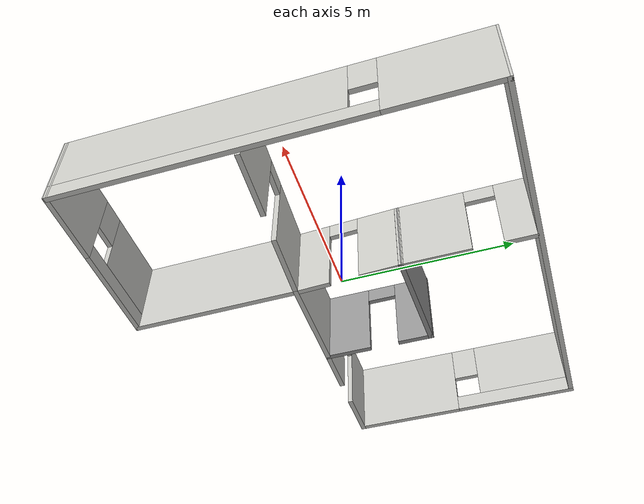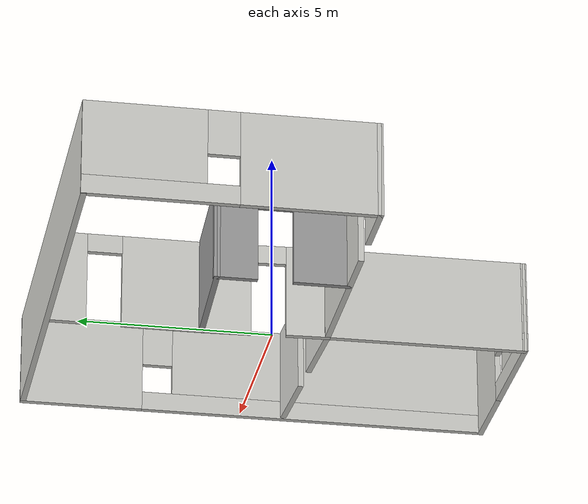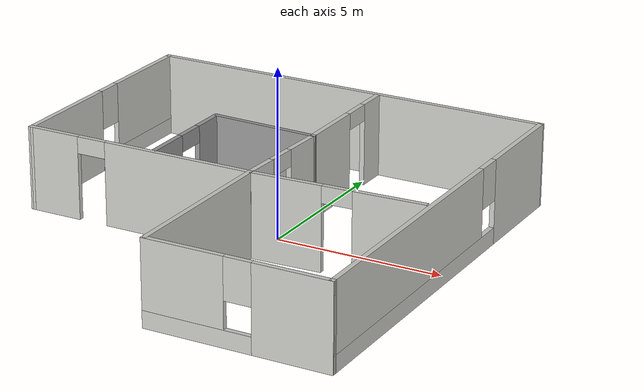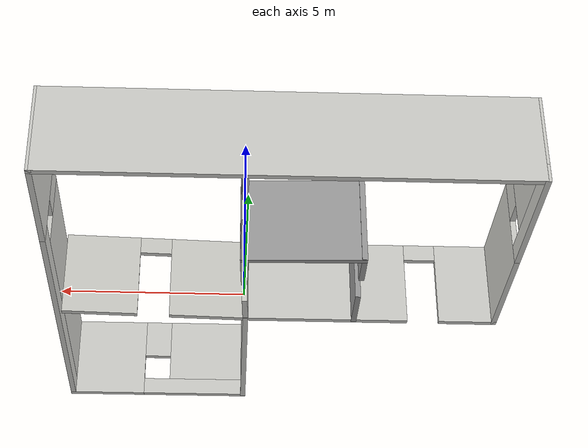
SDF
<?xml version='1.0'?>
<sdf version='1.6'>
  <model name='Appt'>
    <pose frame=''>-0.943393 -0.407292 0 0 -0 0</pose>
    <link name='Wall_10'>
      <pose frame=''>-6.20936 2.58411 0 0 -0 1.57018</pose>
      <visual name='Wall_10_Visual_0'>
        <pose frame=''>-1.92753 0 1.25 0 -0 0</pose>
        <geometry>
          <box>
            <size>3.50674 0.15 2.5</size>
          </box>
        </geometry>
        <material>
          <script>
            <uri>file://media/materials/scripts/gazebo.material</uri>
            <name>Gazebo/CeilingTiled</name>
          </script>
          <ambient>1 1 1 1</ambient>
        </material>
        <meta>
          <layer>0</layer>
        </meta>
      </visual>
      <collision name='Wall_10_Collision_0'>
        <geometry>
          <box>
            <size>3.50674 0.15 2.5</size>
          </box>
        </geometry>
        <pose frame=''>-1.92753 0 1.25 0 -0 0</pose>
      </collision>
      <visual name='Wall_10_Visual_1'>
        <pose frame=''>1.75337 0 0.25 0 -0 0</pose>
        <geometry>
          <box>
            <size>3.85506 0.15 0.5</size>
          </box>
        </geometry>
        <material>
          <script>
            <uri>file://media/materials/scripts/gazebo.material</uri>
            <name>Gazebo/CeilingTiled</name>
          </script>
          <ambient>1 1 1 1</ambient>
        </material>
        <meta>
          <layer>0</layer>
        </meta>
      </visual>
      <collision name='Wall_10_Collision_1'>
        <geometry>
          <box>
            <size>3.85506 0.15 0.5</size>
          </box>
        </geometry>
        <pose frame=''>1.75337 0 0.25 0 -0 0</pose>
      </collision>
      <visual name='Wall_10_Visual_2'>
        <pose frame=''>2.15337 0 1.5 0 -0 0</pose>
        <geometry>
          <box>
            <size>3.05506 0.15 2</size>
          </box>
        </geometry>
        <material>
          <script>
            <uri>file://media/materials/scripts/gazebo.material</uri>
            <name>Gazebo/CeilingTiled</name>
          </script>
          <ambient>1 1 1 1</ambient>
        </material>
        <meta>
          <layer>0</layer>
        </meta>
      </visual>
      <collision name='Wall_10_Collision_2'>
        <geometry>
          <box>
            <size>3.05506 0.15 2</size>
          </box>
        </geometry>
        <pose frame=''>2.15337 0 1.5 0 -0 0</pose>
      </collision>
      <visual name='Wall_10_Visual_3'>
        <pose frame=''>0.225842 0 1.9 0 -0 0</pose>
        <geometry>
          <box>
            <size>0.8 0.15 1.2</size>
          </box>
        </geometry>
        <material>
          <script>
            <uri>file://media/materials/scripts/gazebo.material</uri>
            <name>Gazebo/CeilingTiled</name>
          </script>
          <ambient>1 1 1 1</ambient>
        </material>
        <meta>
          <layer>0</layer>
        </meta>
      </visual>
      <collision name='Wall_10_Collision_3'>
        <geometry>
          <box>
            <size>0.8 0.15 1.2</size>
          </box>
        </geometry>
        <pose frame=''>0.225842 0 1.9 0 -0 0</pose>
      </collision>
    </link>
    <link name='Wall_13'>
      <pose frame=''>1.02161 4.14402 0 0 0 -1.5708</pose>
      <visual name='Wall_13_Visual_0'>
        <pose frame=''>-1.52209 0 1.25 0 -0 0</pose>
        <geometry>
          <box>
            <size>0.955813 0.15 2.5</size>
          </box>
        </geometry>
        <material>
          <script>
            <uri>file://media/materials/scripts/gazebo.material</uri>
            <name>Gazebo/CeilingTiled</name>
          </script>
          <ambient>1 1 1 1</ambient>
        </material>
        <meta>
          <layer>0</layer>
        </meta>
      </visual>
      <collision name='Wall_13_Collision_0'>
        <geometry>
          <box>
            <size>0.955813 0.15 2.5</size>
          </box>
        </geometry>
        <pose frame=''>-1.52209 0 1.25 0 -0 0</pose>
      </collision>
      <visual name='Wall_13_Visual_1'>
        <pose frame=''>0.927906 0 1.25 0 -0 0</pose>
        <geometry>
          <box>
            <size>2.14419 0.15 2.5</size>
          </box>
        </geometry>
        <material>
          <script>
            <uri>file://media/materials/scripts/gazebo.material</uri>
            <name>Gazebo/CeilingTiled</name>
          </script>
          <ambient>1 1 1 1</ambient>
        </material>
        <meta>
          <layer>0</layer>
        </meta>
      </visual>
      <collision name='Wall_13_Collision_1'>
        <geometry>
          <box>
            <size>2.14419 0.15 2.5</size>
          </box>
        </geometry>
        <pose frame=''>0.927906 0 1.25 0 -0 0</pose>
      </collision>
      <visual name='Wall_13_Visual_2'>
        <pose frame=''>-0.594187 0 2.25 0 -0 0</pose>
        <geometry>
          <box>
            <size>0.9 0.15 0.5</size>
          </box>
        </geometry>
        <material>
          <script>
            <uri>file://media/materials/scripts/gazebo.material</uri>
            <name>Gazebo/CeilingTiled</name>
          </script>
          <ambient>1 1 1 1</ambient>
        </material>
        <meta>
          <layer>0</layer>
        </meta>
      </visual>
      <collision name='Wall_13_Collision_2'>
        <geometry>
          <box>
            <size>0.9 0.15 0.5</size>
          </box>
        </geometry>
        <pose frame=''>-0.594187 0 2.25 0 -0 0</pose>
      </collision>
    </link>
    <link name='Wall_14'>
      <collision name='Wall_14_Collision'>
        <geometry>
          <box>
            <size>3.36614 0.15 2.5</size>
          </box>
        </geometry>
        <pose frame=''>0 0 1.25 0 -0 0</pose>
      </collision>
      <visual name='Wall_14_Visual'>
        <pose frame=''>0 0 1.25 0 -0 0</pose>
        <geometry>
          <box>
            <size>3.36614 0.15 2.5</size>
          </box>
        </geometry>
        <material>
          <script>
            <uri>file://media/materials/scripts/gazebo.material</uri>
            <name>Gazebo/Grey</name>
          </script>
          <ambient>1 1 1 1</ambient>
        </material>
        <meta>
          <layer>0</layer>
        </meta>
      </visual>
      <pose frame=''>-0.585241 2.27588 0 0 -0 3.10623</pose>
    </link>
    <link name='Wall_15'>
      <pose frame=''>-2.19371 0.673077 0 0 0 -1.57177</pose>
      <visual name='Wall_15_Visual_0'>
        <pose frame=''>-1.18829 0 1.25 0 -0 0</pose>
        <geometry>
          <box>
            <size>1.11546 0.15 2.5</size>
          </box>
        </geometry>
        <material>
          <script>
            <uri>file://media/materials/scripts/gazebo.material</uri>
            <name>Gazebo/Grey</name>
          </script>
          <ambient>1 1 1 1</ambient>
        </material>
        <meta>
          <layer>0</layer>
        </meta>
      </visual>
      <collision name='Wall_15_Collision_0'>
        <geometry>
          <box>
            <size>1.11546 0.15 2.5</size>
          </box>
        </geometry>
        <pose frame=''>-1.18829 0 1.25 0 -0 0</pose>
      </collision>
      <visual name='Wall_15_Visual_1'>
        <pose frame=''>1.00773 0 1.25 0 -0 0</pose>
        <geometry>
          <box>
            <size>1.47659 0.15 2.5</size>
          </box>
        </geometry>
        <material>
          <script>
            <uri>file://media/materials/scripts/gazebo.material</uri>
            <name>Gazebo/Grey</name>
          </script>
          <ambient>1 1 1 1</ambient>
        </material>
        <meta>
          <layer>0</layer>
        </meta>
      </visual>
      <collision name='Wall_15_Collision_1'>
        <geometry>
          <box>
            <size>1.47659 0.15 2.5</size>
          </box>
        </geometry>
        <pose frame=''>1.00773 0 1.25 0 -0 0</pose>
      </collision>
      <visual name='Wall_15_Visual_2'>
        <pose frame=''>-0.180563 0 2.25 0 -0 0</pose>
        <geometry>
          <box>
            <size>0.9 0.15 0.5</size>
          </box>
        </geometry>
        <material>
          <script>
            <uri>file://media/materials/scripts/gazebo.material</uri>
            <name>Gazebo/Grey</name>
          </script>
          <ambient>1 1 1 1</ambient>
        </material>
        <meta>
          <layer>0</layer>
        </meta>
      </visual>
      <collision name='Wall_15_Collision_2'>
        <geometry>
          <box>
            <size>0.9 0.15 0.5</size>
          </box>
        </geometry>
        <pose frame=''>-0.180563 0 2.25 0 -0 0</pose>
      </collision>
    </link>
    <link name='Wall_17'>
      <pose frame=''>0.955011 0.598616 0 0 -0 1.52972</pose>
      <visual name='Wall_17_Visual_0'>
        <pose frame=''>-1.12377 0 1.25 0 -0 0</pose>
        <geometry>
          <box>
            <size>1.146 0.15 2.5</size>
          </box>
        </geometry>
        <material>
          <script>
            <uri>file://media/materials/scripts/gazebo.material</uri>
            <name>Gazebo/CeilingTiled</name>
          </script>
          <ambient>1 1 1 1</ambient>
        </material>
        <meta>
          <layer>0</layer>
        </meta>
      </visual>
      <collision name='Wall_17_Collision_0'>
        <geometry>
          <box>
            <size>1.146 0.15 2.5</size>
          </box>
        </geometry>
        <pose frame=''>-1.12377 0 1.25 0 -0 0</pose>
      </collision>
      <visual name='Wall_17_Visual_1'>
        <pose frame=''>1.023 0 1.25 0 -0 0</pose>
        <geometry>
          <box>
            <size>1.34755 0.15 2.5</size>
          </box>
        </geometry>
        <material>
          <script>
            <uri>file://media/materials/scripts/gazebo.material</uri>
            <name>Gazebo/CeilingTiled</name>
          </script>
          <ambient>1 1 1 1</ambient>
        </material>
        <meta>
          <layer>0</layer>
        </meta>
      </visual>
      <collision name='Wall_17_Collision_1'>
        <geometry>
          <box>
            <size>1.34755 0.15 2.5</size>
          </box>
        </geometry>
        <pose frame=''>1.023 0 1.25 0 -0 0</pose>
      </collision>
      <visual name='Wall_17_Visual_2'>
        <pose frame=''>-0.100773 0 2.25 0 -0 0</pose>
        <geometry>
          <box>
            <size>0.9 0.15 0.5</size>
          </box>
        </geometry>
        <material>
          <script>
            <uri>file://media/materials/scripts/gazebo.material</uri>
            <name>Gazebo/CeilingTiled</name>
          </script>
          <ambient>1 1 1 1</ambient>
        </material>
        <meta>
          <layer>0</layer>
        </meta>
      </visual>
      <collision name='Wall_17_Collision_2'>
        <geometry>
          <box>
            <size>0.9 0.15 0.5</size>
          </box>
        </geometry>
        <pose frame=''>-0.100773 0 2.25 0 -0 0</pose>
      </collision>
    </link>
    <link name='Wall_19'>
      <pose frame=''>3.44003 -0.90077 0 0 -0 0.047394</pose>
      <visual name='Wall_19_Visual_0'>
        <pose frame=''>-1.50963 0 1.25 0 -0 0</pose>
        <geometry>
          <box>
            <size>2.23971 0.15 2.5</size>
          </box>
        </geometry>
        <material>
          <script>
            <uri>file://media/materials/scripts/gazebo.material</uri>
            <name>Gazebo/CeilingTiled</name>
          </script>
          <ambient>1 1 1 1</ambient>
        </material>
        <meta>
          <layer>0</layer>
        </meta>
      </visual>
      <collision name='Wall_19_Collision_0'>
        <geometry>
          <box>
            <size>2.23971 0.15 2.5</size>
          </box>
        </geometry>
        <pose frame=''>-1.50963 0 1.25 0 -0 0</pose>
      </collision>
      <visual name='Wall_19_Visual_1'>
        <pose frame=''>1.56985 0 1.25 0 -0 0</pose>
        <geometry>
          <box>
            <size>2.11927 0.15 2.5</size>
          </box>
        </geometry>
        <material>
          <script>
            <uri>file://media/materials/scripts/gazebo.material</uri>
            <name>Gazebo/CeilingTiled</name>
          </script>
          <ambient>1 1 1 1</ambient>
        </material>
        <meta>
          <layer>0</layer>
        </meta>
      </visual>
      <collision name='Wall_19_Collision_1'>
        <geometry>
          <box>
            <size>2.11927 0.15 2.5</size>
          </box>
        </geometry>
        <pose frame=''>1.56985 0 1.25 0 -0 0</pose>
      </collision>
      <visual name='Wall_19_Visual_2'>
        <pose frame=''>0.060219 0 2.25 0 -0 0</pose>
        <geometry>
          <box>
            <size>0.9 0.15 0.5</size>
          </box>
        </geometry>
        <material>
          <script>
            <uri>file://media/materials/scripts/gazebo.material</uri>
            <name>Gazebo/CeilingTiled</name>
          </script>
          <ambient>1 1 1 1</ambient>
        </material>
        <meta>
          <layer>0</layer>
        </meta>
      </visual>
      <collision name='Wall_19_Collision_2'>
        <geometry>
          <box>
            <size>0.9 0.15 0.5</size>
          </box>
        </geometry>
        <pose frame=''>0.060219 0 2.25 0 -0 0</pose>
      </collision>
    </link>
    <link name='Wall_5'>
      <collision name='Wall_5_Collision'>
        <geometry>
          <box>
            <size>12.5 0.15 2.5</size>
          </box>
        </geometry>
        <pose frame=''>0 0 1.25 0 -0 0</pose>
      </collision>
      <visual name='Wall_5_Visual'>
        <pose frame=''>0 0 1.25 0 -0 0</pose>
        <geometry>
          <box>
            <size>12.5 0.15 2.5</size>
          </box>
        </geometry>
        <material>
          <script>
            <uri>file://media/materials/scripts/gazebo.material</uri>
            <name>Gazebo/CeilingTiled</name>
          </script>
          <ambient>1 1 1 1</ambient>
        </material>
        <meta>
          <layer>0</layer>
        </meta>
      </visual>
      <pose frame=''>-0.001876 6.19001 0 0 -0 0</pose>
    </link>
    <link name='Wall_6'>
      <pose frame=''>6.19226 0.015006 0 0 0 -1.5677</pose>
      <visual name='Wall_6_Visual_0'>
        <pose frame=''>-4.62763 0 1.25 0 -0 0</pose>
        <geometry>
          <box>
            <size>3.24479 0.15 2.5</size>
          </box>
        </geometry>
        <material>
          <script>
            <uri>file://media/materials/scripts/gazebo.material</uri>
            <name>Gazebo/CeilingTiled</name>
          </script>
          <ambient>1 1 1 1</ambient>
        </material>
        <meta>
          <layer>0</layer>
        </meta>
      </visual>
      <collision name='Wall_6_Collision_0'>
        <geometry>
          <box>
            <size>3.24479 0.15 2.5</size>
          </box>
        </geometry>
        <pose frame=''>-4.62763 0 1.25 0 -0 0</pose>
      </collision>
      <visual name='Wall_6_Visual_1'>
        <pose frame=''>1.6224 0 0.25 0 -0 0</pose>
        <geometry>
          <box>
            <size>9.25526 0.15 0.5</size>
          </box>
        </geometry>
        <material>
          <script>
            <uri>file://media/materials/scripts/gazebo.material</uri>
            <name>Gazebo/CeilingTiled</name>
          </script>
          <ambient>1 1 1 1</ambient>
        </material>
        <meta>
          <layer>0</layer>
        </meta>
      </visual>
      <collision name='Wall_6_Collision_1'>
        <geometry>
          <box>
            <size>9.25526 0.15 0.5</size>
          </box>
        </geometry>
        <pose frame=''>1.6224 0 0.25 0 -0 0</pose>
      </collision>
      <visual name='Wall_6_Visual_2'>
        <pose frame=''>2.0224 0 1.5 0 -0 0</pose>
        <geometry>
          <box>
            <size>8.45527 0.15 2</size>
          </box>
        </geometry>
        <material>
          <script>
            <uri>file://media/materials/scripts/gazebo.material</uri>
            <name>Gazebo/CeilingTiled</name>
          </script>
          <ambient>1 1 1 1</ambient>
        </material>
        <meta>
          <layer>0</layer>
        </meta>
      </visual>
      <collision name='Wall_6_Collision_2'>
        <geometry>
          <box>
            <size>8.45527 0.15 2</size>
          </box>
        </geometry>
        <pose frame=''>2.0224 0 1.5 0 -0 0</pose>
      </collision>
      <visual name='Wall_6_Visual_3'>
        <pose frame=''>-2.60523 0 1.9 0 -0 0</pose>
        <geometry>
          <box>
            <size>0.8 0.15 1.2</size>
          </box>
        </geometry>
        <material>
          <script>
            <uri>file://media/materials/scripts/gazebo.material</uri>
            <name>Gazebo/CeilingTiled</name>
          </script>
          <ambient>1 1 1 1</ambient>
        </material>
        <meta>
          <layer>0</layer>
        </meta>
      </visual>
      <collision name='Wall_6_Collision_3'>
        <geometry>
          <box>
            <size>0.8 0.15 1.2</size>
          </box>
        </geometry>
        <pose frame=''>-2.60523 0 1.9 0 -0 0</pose>
      </collision>
    </link>
    <link name='Wall_7'>
      <pose frame=''>3.5364 -6.19024 0 0 -0 3.14159</pose>
      <visual name='Wall_7_Visual_0'>
        <pose frame=''>-1.60305 0 1.25 0 -0 0</pose>
        <geometry>
          <box>
            <size>2.2939 0.15 2.5</size>
          </box>
        </geometry>
        <material>
          <script>
            <uri>file://media/materials/scripts/gazebo.material</uri>
            <name>Gazebo/CeilingTiled</name>
          </script>
          <ambient>1 1 1 1</ambient>
        </material>
        <meta>
          <layer>0</layer>
        </meta>
      </visual>
      <collision name='Wall_7_Collision_0'>
        <geometry>
          <box>
            <size>2.2939 0.15 2.5</size>
          </box>
        </geometry>
        <pose frame=''>-1.60305 0 1.25 0 -0 0</pose>
      </collision>
      <visual name='Wall_7_Visual_1'>
        <pose frame=''>1.14695 0 0.25 0 -0 0</pose>
        <geometry>
          <box>
            <size>3.2061 0.15 0.5</size>
          </box>
        </geometry>
        <material>
          <script>
            <uri>file://media/materials/scripts/gazebo.material</uri>
            <name>Gazebo/CeilingTiled</name>
          </script>
          <ambient>1 1 1 1</ambient>
        </material>
        <meta>
          <layer>0</layer>
        </meta>
      </visual>
      <collision name='Wall_7_Collision_1'>
        <geometry>
          <box>
            <size>3.2061 0.15 0.5</size>
          </box>
        </geometry>
        <pose frame=''>1.14695 0 0.25 0 -0 0</pose>
      </collision>
      <visual name='Wall_7_Visual_2'>
        <pose frame=''>1.54695 0 1.5 0 -0 0</pose>
        <geometry>
          <box>
            <size>2.4061 0.15 2</size>
          </box>
        </geometry>
        <material>
          <script>
            <uri>file://media/materials/scripts/gazebo.material</uri>
            <name>Gazebo/CeilingTiled</name>
          </script>
          <ambient>1 1 1 1</ambient>
        </material>
        <meta>
          <layer>0</layer>
        </meta>
      </visual>
      <collision name='Wall_7_Collision_2'>
        <geometry>
          <box>
            <size>2.4061 0.15 2</size>
          </box>
        </geometry>
        <pose frame=''>1.54695 0 1.5 0 -0 0</pose>
      </collision>
      <visual name='Wall_7_Visual_3'>
        <pose frame=''>-0.056097 0 1.9 0 -0 0</pose>
        <geometry>
          <box>
            <size>0.8 0.15 1.2</size>
          </box>
        </geometry>
        <material>
          <script>
            <uri>file://media/materials/scripts/gazebo.material</uri>
            <name>Gazebo/CeilingTiled</name>
          </script>
          <ambient>1 1 1 1</ambient>
        </material>
        <meta>
          <layer>0</layer>
        </meta>
      </visual>
      <collision name='Wall_7_Collision_3'>
        <geometry>
          <box>
            <size>0.8 0.15 1.2</size>
          </box>
        </geometry>
        <pose frame=''>-0.056097 0 1.9 0 -0 0</pose>
      </collision>
    </link>
    <link name='Wall_8'>
      <collision name='Wall_8_Collision'>
        <geometry>
          <box>
            <size>5.28827 0.15 2.5</size>
          </box>
        </geometry>
        <pose frame=''>0 0 1.25 0 -0 0</pose>
      </collision>
      <visual name='Wall_8_Visual'>
        <pose frame=''>0 0 1.25 0 -0 0</pose>
        <geometry>
          <box>
            <size>5.28827 0.15 2.5</size>
          </box>
        </geometry>
        <material>
          <script>
            <uri>file://media/materials/scripts/gazebo.material</uri>
            <name>Gazebo/CeilingTiled</name>
          </script>
          <ambient>1 1 1 1</ambient>
        </material>
        <meta>
          <layer>0</layer>
        </meta>
      </visual>
      <pose frame=''>0.874908 -3.59089 0 0 -0 1.56554</pose>
    </link>
    <link name='Wall_9'>
      <pose frame=''>-2.66159 -1.02179 0 0 -0 3.14159</pose>
      <visual name='Wall_9_Visual_0'>
        <pose frame=''>-1.27921 0 1.25 0 -0 0</pose>
        <geometry>
          <box>
            <size>4.69157 0.15 2.5</size>
          </box>
        </geometry>
        <material>
          <script>
            <uri>file://media/materials/scripts/gazebo.material</uri>
            <name>Gazebo/CeilingTiled</name>
          </script>
          <ambient>1 1 1 1</ambient>
        </material>
        <meta>
          <layer>0</layer>
        </meta>
      </visual>
      <collision name='Wall_9_Collision_0'>
        <geometry>
          <box>
            <size>4.69157 0.15 2.5</size>
          </box>
        </geometry>
        <pose frame=''>-1.27921 0 1.25 0 -0 0</pose>
      </collision>
      <visual name='Wall_9_Visual_1'>
        <pose frame=''>2.79579 0 1.25 0 -0 0</pose>
        <geometry>
          <box>
            <size>1.65843 0.15 2.5</size>
          </box>
        </geometry>
        <material>
          <script>
            <uri>file://media/materials/scripts/gazebo.material</uri>
            <name>Gazebo/CeilingTiled</name>
          </script>
          <ambient>1 1 1 1</ambient>
        </material>
        <meta>
          <layer>0</layer>
        </meta>
      </visual>
      <collision name='Wall_9_Collision_1'>
        <geometry>
          <box>
            <size>1.65843 0.15 2.5</size>
          </box>
        </geometry>
        <pose frame=''>2.79579 0 1.25 0 -0 0</pose>
      </collision>
      <visual name='Wall_9_Visual_2'>
        <pose frame=''>1.51657 0 2.25 0 -0 0</pose>
        <geometry>
          <box>
            <size>0.9 0.15 0.5</size>
          </box>
        </geometry>
        <material>
          <script>
            <uri>file://media/materials/scripts/gazebo.material</uri>
            <name>Gazebo/CeilingTiled</name>
          </script>
          <ambient>1 1 1 1</ambient>
        </material>
        <meta>
          <layer>0</layer>
        </meta>
      </visual>
      <collision name='Wall_9_Collision_2'>
        <geometry>
          <box>
            <size>0.9 0.15 0.5</size>
          </box>
        </geometry>
        <pose frame=''>1.51657 0 2.25 0 -0 0</pose>
      </collision>
    </link>
    <static>1</static>
  </model>
</sdf>
